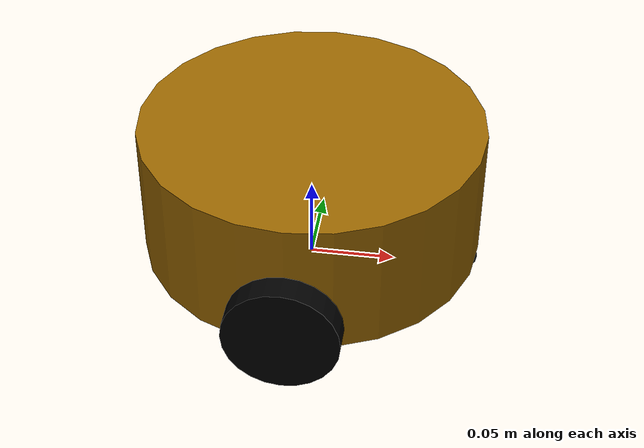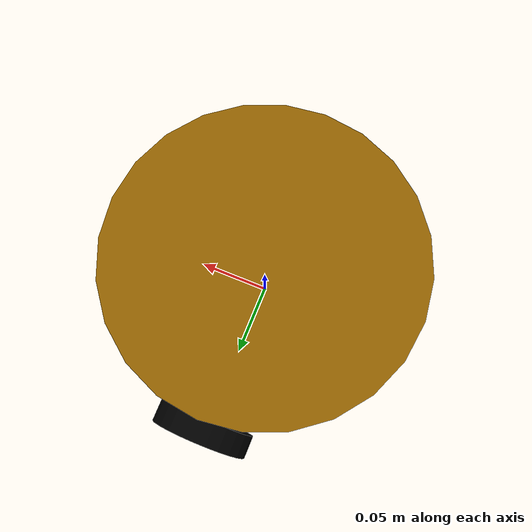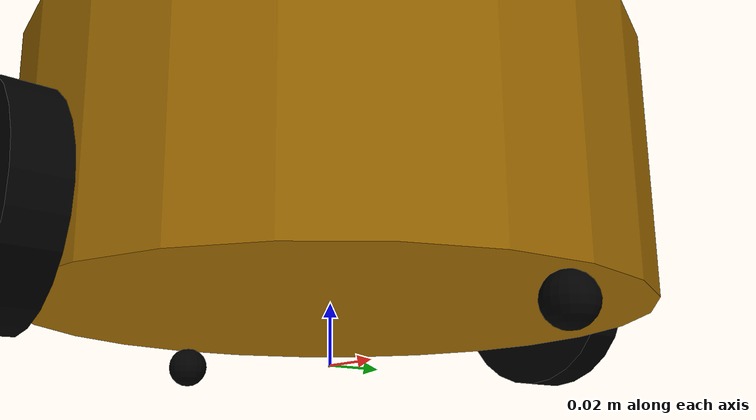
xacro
<robot name="jixie" xmlns:xacro="http://wiki.ros.org/xacro">
    <xacro:property name="base_footprint_length" value="0.001" />
    <xacro:property name="base_footprint_wide" value="0.001" />
    <xacro:property name="base_footprint_high" value="0.001" />
    <xacro:property name="dipan_radius" value="0.1" />
    <xacro:property name="dipan_length" value="0.08" />
    <xacro:property name="dipan_mass" value="2" />
    <xacro:property name="qudonglun_radius" value="0.0325" />
    <xacro:property name="qudonglun_length" value="0.015" />
    <xacro:property name="qudonglun_mass" value="0.05" />
    <xacro:property name="PI" value="3.1415927" />
    <xacro:property name="dipan_length" value="0.08" />
    <xacro:property name="lidi_space" value="0.015" />
    <xacro:property name="zhichenglun_radius" value="0.0075" />
    <xacro:property name="zhichenglun_mass" value="0.03" />

    <material name="black">
        <color rgba="0.0 0.0 0.0 1.0" />
    </material>
    <material name="orange">
        <color rgba="0.6 0.4 0.0 1.0" />
    </material>
    <material name="red">
        <color rgba="1 0 0 1.0" />
    </material>
    <material name="blue">
        <color rgba="0 0 1 1.0" />
    </material>

    <xacro:macro name="base_fun" params="link_name_1">
        <link name="${link_name_1}">
            <visual>
                <geometry>
                    <box size="${base_footprint_length} ${base_footprint_wide} ${base_footprint_high}" />
                </geometry>
            </visual>
        </link>
    </xacro:macro>
    <xacro:base_fun link_name_1="base_footprint" />

    <xacro:macro name="dipan_fun" params="link_name_2">
        <link name="${link_name_2}">
            <visual>
                <geometry>
                    <cylinder radius="${dipan_radius}" length="${dipan_length}" />
                </geometry>
                <origin xyz="0 0 0" rpy="0 0 0" />
                <material name="orange" />
            </visual>
            <collision >
                <geometry>
                    <cylinder radius="${dipan_radius}" length="${dipan_length}" />
                </geometry>
                <origin xyz="0 0 0" rpy="0 0 0" />
            </collision>
            <xacro:cylinder_inertial_matrix m="${dipan_mass}" r="${dipan_radius}" h="${dipan_length}" />
        </link>
        <joint name="base_dipan" type="fixed">
            <parent link="base_footprint" />
            <child link="${link_name_2}" />
            <origin xyz="0 0 ${lidi_space+dipan_length/2}" rpy="0 0 0" />
            <axis xyz="0 0 0" />
        </joint>
        <gazebo reference="${link_name_2}">
            <material>Gazebo/Red</material>
        </gazebo>
    </xacro:macro>
    <xacro:dipan_fun link_name_2="dipan" />

    <xacro:macro name="qudonglun_fun" params="side symbol">
        <link name="qudonglun_${side}">
            <visual>
                <geometry>
                    <cylinder radius="${qudonglun_radius}" length="${qudonglun_length}" />
                </geometry>
                <origin xyz="0 0 0" rpy="0 1.57 1.57" />
                <material name="black" />
            </visual>
            <collision>
                <geometry>
                    <cylinder radius="${qudonglun_radius}" length="${qudonglun_length}" />
                </geometry>
                <origin xyz="0 0 0" rpy="0 1.57 1.57" />
            </collision>
            <xacro:cylinder_inertial_matrix m="${qudonglun_mass}" r="${qudonglun_radius}" h="${qudonglun_length}" />
        </link>
        <joint name="dipan_qudonglun_${side}" type="continuous">
            <parent link="dipan" />
            <child link="qudonglun_${side}" />
            <origin xyz="0 ${symbol*(dipan_radius+qudonglun_length/2)} ${-(lidi_space+dipan_length/2-qudonglun_radius)}" rpy="0 0 0" />
            <axis xyz="0 1 0" />
        </joint>
        <gazebo reference="qudonglun_${side}">
            <material>Gazebo/Yellow</material>
        </gazebo>
    </xacro:macro>
    <xacro:qudonglun_fun side="left" symbol="+1" />
    <xacro:qudonglun_fun side="right" symbol="-1" />

    <xacro:macro name="zhichenglun_fun" params="side symbol" >
      <link name="zhichenglun_${side}">
        <visual>
            <geometry>
                <sphere radius="${zhichenglun_radius}" />
            </geometry>
            <origin xyz="0 0 0" rpy="0 0 0" />
            <material name="black" />
        </visual>
        <collision>
            <geometry>
                <sphere radius="${zhichenglun_radius}" />
            </geometry>
            <origin xyz="0 0 0" rpy="0 0 0" />
        </collision>
        <xacro:sphere_inertial_matrix m="${zhichenglun_mass}" r="${zhichenglun_radius}" />
      </link>

      <joint name="dipan_zhichenglun_${side}" type="continuous">
          <parent link="dipan" />
          <child link="zhichenglun_${side}" />
          <origin xyz="${symbol*(dipan_radius-zhichenglun_radius)} 0 ${-(dipan_length / 2 + lidi_space / 2)}" />
          <axis xyz="1 1 1" />
      </joint>
      <gazebo reference="zhichenglun_${side}">
        <material>Gazebo/Red</material>
      </gazebo>
    </xacro:macro>

    <xacro:zhichenglun_fun side="front" symbol="+1" />
    <xacro:zhichenglun_fun side="back" symbol="-1" />
</robot>
